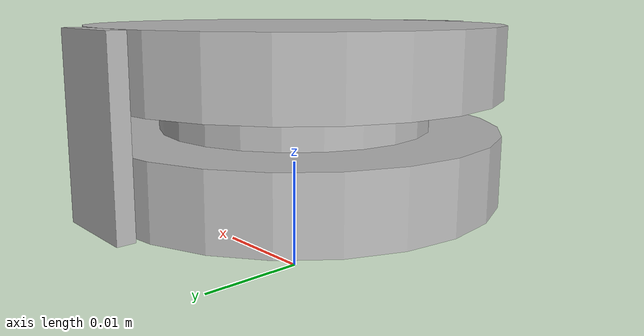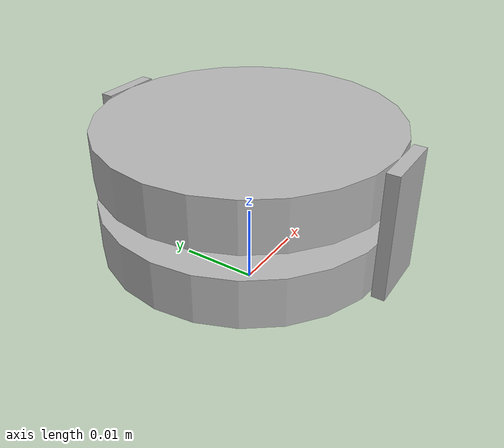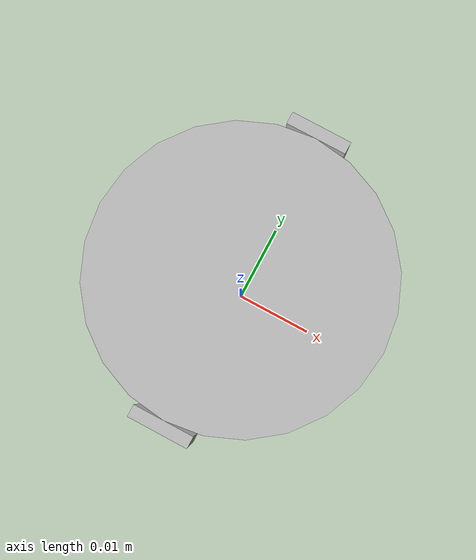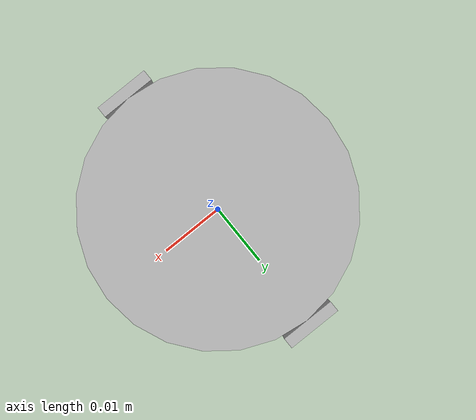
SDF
<?xml version="1.0" ?>
<sdf version='1.7'>
<model name="pulley">
  <static>false</static>
  <link name="bearing">
    <pose>0 0 0.015 0 0 0</pose>
    <inertial>
      <pose>0 0 0 0 0 0</pose>
      <inertia>
        <ixx>0.00001</ixx>
        <ixy>0</ixy>
        <ixz>0</ixz>
        <iyy>0.00001</iyy>
        <iyz>0</iyz>
        <izz>0.00001</izz>
      </inertia>
      <mass>0.01</mass>
    </inertial>
    <collision name="collisionmiddle">
      <geometry>
        <cylinder>
          <radius>0.012</radius>
          <length>0.003</length>
        </cylinder>
      </geometry>
      <surface>
        <friction>
          <ode>
            <mu>0.001</mu>
            <mu2>0.001</mu2>
          </ode>
        </friction>
      </surface>
    </collision>
    <visual name="visualmiddle">
      <geometry>
        <cylinder>
          <radius>0.012</radius>
          <length>0.003</length>
        </cylinder>
      </geometry>
    </visual>
  </link>
  <link name="top">
    <pose relative_to="bearing">0 0 0.0045 0 0 0</pose>
    <inertial>
      <pose>0 0 0 0 0 0</pose>
      <inertia>
        <ixx>0.00001</ixx>
        <ixy>0</ixy>
        <ixz>0</ixz>
        <iyy>0.00001</iyy>
        <iyz>0</iyz>
        <izz>0.00001</izz>
      </inertia>
      <mass>0.01</mass>
    </inertial>
    <collision name="collisiontop">
      <geometry>
        <cylinder>
          <radius>0.018</radius>
          <length>0.006</length>
        </cylinder>
      </geometry>
    </collision>
    <visual name="visualtop">
      <geometry>
        <cylinder>
          <radius>0.018</radius>
          <length>0.006</length>
        </cylinder>
      </geometry>
    </visual>
  </link>
  <link name="bottom">
    <pose relative_to="bearing">0 0 -0.0045 0 0 0</pose>
    <inertial>
      <pose>0 0 0 0 0 0</pose>
      <inertia>
        <ixx>0.00001</ixx>
        <ixy>0</ixy>
        <ixz>0</ixz>
        <iyy>0.00001</iyy>
        <iyz>0</iyz>
        <izz>0.00001</izz>
      </inertia>
      <mass>0.01</mass>
    </inertial>
    <collision name="collisionbottom">
      <geometry>
        <cylinder>
          <radius>0.018</radius>
          <length>0.006</length>
        </cylinder>
      </geometry>
    </collision>
    <visual name="visualbottom">
      <geometry>
        <cylinder>
          <radius>0.018</radius>
          <length>0.006</length>
        </cylinder>
      </geometry>
    </visual>
  </link>
  <link name="stopper1">
    <pose relative_to="top">0 0.01875 -0.0045 0 0 1.5708</pose>
    <inertial>
      <pose>0 0 0 0 0 0</pose>
      <inertia>
        <ixx>0.00001</ixx>
        <ixy>0</ixy>
        <ixz>0</ixz>
        <iyy>0.00001</iyy>
        <iyz>0</iyz>
        <izz>0.00001</izz>
      </inertia>
      <mass>0.01</mass>
    </inertial>
    <collision name="collision">
      <geometry>
        <box>
          <size>0.0015 0.0075 0.015</size>
        </box>
      </geometry>
    </collision>
    <visual name="visual">
      <geometry>
        <box>
          <size>0.0015 0.0075 0.015</size>
        </box>
      </geometry>
    </visual>
  </link>
  <joint name="stopper1_joint" type="fixed">
    <child>stopper1</child>
    <parent>top</parent>
  </joint>
  <joint name="stopper1a_joint" type="fixed">
    <child>stopper1</child>
    <parent>bottom</parent>
  </joint>
  <link name="stopper2">
    <pose relative_to="top">0 -0.01875 -0.0045 0 0 1.5708</pose>
    <inertial>
      <pose>0 0 0 0 0 0</pose>
      <inertia>
        <ixx>0.00001</ixx>
        <ixy>0</ixy>
        <ixz>0</ixz>
        <iyy>0.00001</iyy>
        <iyz>0</iyz>
        <izz>0.00001</izz>
      </inertia>
      <mass>0.01</mass>
    </inertial>
    <collision name="collision">
      <geometry>
        <box>
          <size>0.0015 0.0075 0.015</size>
        </box>
      </geometry>
    </collision>
    <visual name="visual">
      <geometry>
        <box>
          <size>0.0015 0.0075 0.015</size>
        </box>
      </geometry>
    </visual>
  </link>
  <joint name="stopper2_joint" type="fixed">
    <child>stopper2</child>
    <parent>top</parent>
  </joint>
  <joint name="stopper2a_joint" type="fixed">
    <child>stopper2</child>
    <parent>bottom</parent>
  </joint>
  <!-- JOINTS -->
  <joint name="revolute1" type="revolute">
    <child>bearing</child>
    <parent>top</parent>
    <axis>
      <xyz>0 0 1</xyz>
    </axis>
  </joint>
</model>
</sdf>
